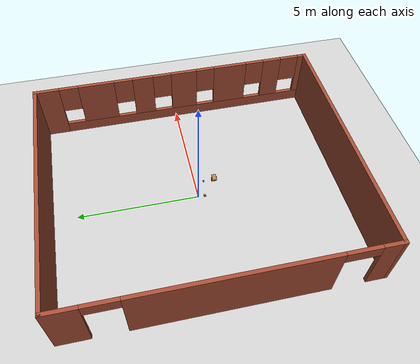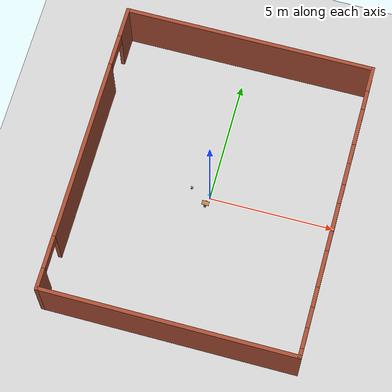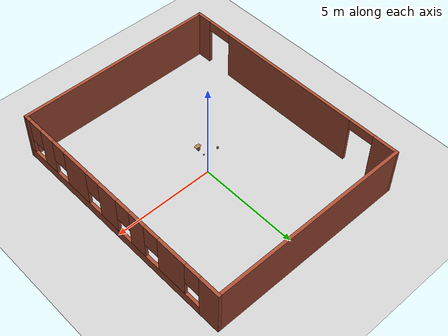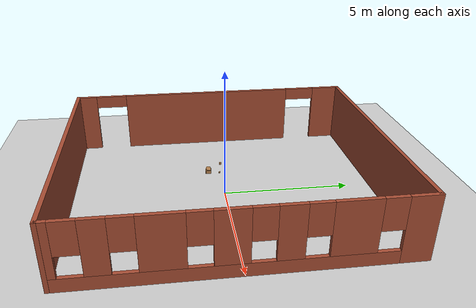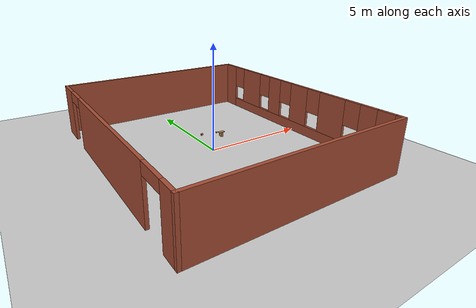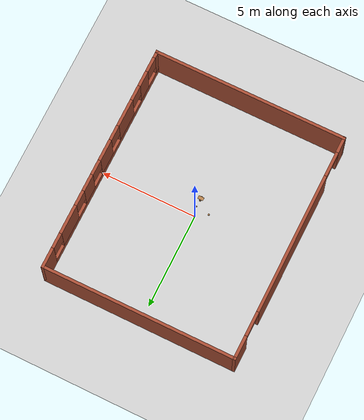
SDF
<sdf version="1.6">
 <world name="default">
  <light name="sun" type="directional">
   <pose>0 0 10 0 -0 0</pose>
   <diffuse>0.8 0.8 0.8 1</diffuse>
   <specular>0.2 0.2 0.2 1</specular>
   <attenuation>
    <range>1000</range>
    <constant>0.9</constant>
    <linear>0.01</linear>
    <quadratic>0.001</quadratic>
   </attenuation>
   <direction>-0.5 0.1 -0.9</direction>
  </light>
  <model name="ground_plane">
   <static>1</static>
   <link name="ground_plane::link">
    <collision name="collision">
     <geometry><plane><normal>0 0 1</normal><size>100 100</size></plane></geometry>
     <surface>
      <contact><collide_bitmask>65535</collide_bitmask></contact>
      <friction><ode><mu>100</mu><mu2>50</mu2></ode></friction>
     </surface>
    </collision>
    <visual name="visual">
     <cast_shadows>0</cast_shadows>
     <geometry><plane><normal>0 0 1</normal><size>100 100</size></plane></geometry>
     <material>
      <script><uri>file://media/materials/scripts/gazebo.material</uri><name>Gazebo/Grey</name></script>
     </material>
    </visual>
   </link>
  </model>
  <gravity>0 0 -9.8</gravity>
  <magnetic_field>6e-06 2.3e-05 -4.2e-05</magnetic_field>
  <atmosphere type="adiabatic"/>
  <physics name="default_physics" default="0" type="ode">
   <max_step_size>0.001</max_step_size>
   <real_time_factor>1</real_time_factor>
   <real_time_update_rate>1000</real_time_update_rate>
  </physics>
  <scene><ambient>0.4 0.4 0.4 1</ambient><background>0.7 0.7 0.7 1</background><shadows>1</shadows></scene>
  <spherical_coordinates>
   <surface_model>EARTH_WGS84</surface_model>
   <latitude_deg>0</latitude_deg>
   <longitude_deg>0</longitude_deg>
   <elevation>0</elevation>
   <heading_deg>0</heading_deg>
  </spherical_coordinates>
  <model name="robot_house">
   <link name="Wall_5">
    <pose>0 6 0 0 -0 0</pose>
    <visual name="Wall_5_Visual">
     <pose>0 0 1.25 0 -0 0</pose>
     <geometry><box><size>10.15 0.15 2.5</size></box></geometry>
     <material>
      <script><uri>file://media/materials/scripts/gazebo.material</uri><name>Gazebo/Bricks</name></script>
      <ambient>1 1 1 1</ambient>
      <shader type="pixel"/>
      <diffuse>1 1 1 1</diffuse>
      <specular>0.2 0.2 0.2 1</specular>
      <emissive>0 0 0 1</emissive>
     </material>
     <meta><layer>0</layer></meta>
    </visual>
    <collision name="Wall_5_Collision">
     <pose>0 0 1.25 0 -0 0</pose>
     <geometry><box><size>10.15 0.15 2.5</size></box></geometry>
     <surface>
      <friction>
       <ode><mu>1</mu><mu2>1</mu2><fdir1>0 0 0</fdir1><slip1>0</slip1><slip2>0</slip2></ode>
       <torsional>
        <coefficient>1</coefficient>
        <patch_radius>0</patch_radius>
        <surface_radius>0</surface_radius>
        <use_patch_radius>1</use_patch_radius>
        <ode><slip>0</slip></ode>
       </torsional>
      </friction>
      <bounce><restitution_coefficient>0</restitution_coefficient><threshold>1e+06</threshold></bounce>
      <contact>
       <collide_without_contact>0</collide_without_contact>
       <collide_without_contact_bitmask>1</collide_without_contact_bitmask>
       <collide_bitmask>1</collide_bitmask>
       <ode>
        <soft_cfm>0</soft_cfm>
        <soft_erp>0.2</soft_erp>
        <kp>1e+13</kp>
        <kd>1</kd>
        <max_vel>0.01</max_vel>
        <min_depth>0</min_depth>
       </ode>
       <bullet>
        <split_impulse>1</split_impulse>
        <split_impulse_penetration_threshold>-0.01</split_impulse_penetration_threshold>
        <soft_cfm>0</soft_cfm>
        <soft_erp>0.2</soft_erp>
        <kp>1e+13</kp>
        <kd>1</kd>
       </bullet>
      </contact>
     </surface>
    </collision>
   </link>
   <link name="Wall_6">
    <pose>5 0 0 0 0 -1.5708</pose>
    <visual name="Wall_6_Visual_2">
     <pose>-3.42977 0 1.5 0 -0 0</pose>
     <geometry><box><size>1.54642 0.15 2</size></box></geometry>
     <material>
      <script><uri>file://media/materials/scripts/gazebo.material</uri><name>Gazebo/Bricks</name></script>
      <ambient>1 1 1 1</ambient>
      <shader type="pixel"/>
      <diffuse>1 1 1 1</diffuse>
      <specular>0.2 0.2 0.2 1</specular>
      <emissive>0 0 0 1</emissive>
     </material>
     <meta><layer>0</layer></meta>
    </visual>
    <visual name="Wall_6_Visual_8">
     <pose>-4.60298 0 1.9 0 -0 0</pose>
     <geometry><box><size>0.8 0.15 1.2</size></box></geometry>
     <material>
      <script><uri>file://media/materials/scripts/gazebo.material</uri><name>Gazebo/Bricks</name></script>
      <ambient>1 1 1 1</ambient>
      <shader type="pixel"/>
      <diffuse>1 1 1 1</diffuse>
      <specular>0.2 0.2 0.2 1</specular>
      <emissive>0 0 0 1</emissive>
     </material>
     <meta><layer>0</layer></meta>
    </visual>
    <visual name="Wall_6_Visual_12">
     <pose>3.64995 0 1.9 0 -0 0</pose>
     <geometry><box><size>0.8 0.15 1.2</size></box></geometry>
     <material>
      <script><uri>file://media/materials/scripts/gazebo.material</uri><name>Gazebo/Bricks</name></script>
      <ambient>1 1 1 1</ambient>
      <shader type="pixel"/>
      <diffuse>1 1 1 1</diffuse>
      <specular>0.2 0.2 0.2 1</specular>
      <emissive>0 0 0 1</emissive>
     </material>
     <meta><layer>0</layer></meta>
    </visual>
    <visual name="Wall_6_Visual_6">
     <pose>4.45907 0 1.5 0 -0 0</pose>
     <geometry><box><size>0.818223 0.15 2</size></box></geometry>
     <material>
      <script><uri>file://media/materials/scripts/gazebo.material</uri><name>Gazebo/Bricks</name></script>
      <ambient>1 1 1 1</ambient>
      <shader type="pixel"/>
      <diffuse>1 1 1 1</diffuse>
      <specular>0.2 0.2 0.2 1</specular>
      <emissive>0 0 0 1</emissive>
     </material>
     <meta><layer>0</layer></meta>
    </visual>
    <visual name="Wall_6_Visual_1">
     <pose>0.536009 0 0.25 0 -0 0</pose>
     <geometry><box><size>11.078 0.15 0.5</size></box></geometry>
     <material>
      <script><uri>file://media/materials/scripts/gazebo.material</uri><name>Gazebo/Bricks</name></script>
      <ambient>1 1 1 1</ambient>
      <shader type="pixel"/>
      <diffuse>1 1 1 1</diffuse>
      <specular>0.2 0.2 0.2 1</specular>
      <emissive>0 0 0 1</emissive>
     </material>
     <meta><layer>0</layer></meta>
    </visual>
    <visual name="Wall_6_Visual_13">
     <pose>5.26818 0 1.9 0 -0 0</pose>
     <geometry><box><size>0.8 0.15 1.2</size></box></geometry>
     <material>
      <script><uri>file://media/materials/scripts/gazebo.material</uri><name>Gazebo/Bricks</name></script>
      <ambient>1 1 1 1</ambient>
      <shader type="pixel"/>
      <diffuse>1 1 1 1</diffuse>
      <specular>0.2 0.2 0.2 1</specular>
      <emissive>0 0 0 1</emissive>
     </material>
     <meta><layer>0</layer></meta>
    </visual>
    <visual name="Wall_6_Visual_10">
     <pose>-0.557425 0 1.9 0 -0 0</pose>
     <geometry><box><size>0.8 0.15 1.2</size></box></geometry>
     <material>
      <script><uri>file://media/materials/scripts/gazebo.material</uri><name>Gazebo/Bricks</name></script>
      <ambient>1 1 1 1</ambient>
      <shader type="pixel"/>
      <diffuse>1 1 1 1</diffuse>
      <specular>0.2 0.2 0.2 1</specular>
      <emissive>0 0 0 1</emissive>
     </material>
     <meta><layer>0</layer></meta>
    </visual>
    <visual name="Wall_6_Visual_11">
     <pose>1.38444 0 1.9 0 -0 0</pose>
     <geometry><box><size>0.8 0.15 1.2</size></box></geometry>
     <material>
      <script><uri>file://media/materials/scripts/gazebo.material</uri><name>Gazebo/Bricks</name></script>
      <ambient>1 1 1 1</ambient>
      <shader type="pixel"/>
      <diffuse>1 1 1 1</diffuse>
      <specular>0.2 0.2 0.2 1</specular>
      <emissive>0 0 0 1</emissive>
     </material>
     <meta><layer>0</layer></meta>
    </visual>
    <visual name="Wall_6_Visual_7">
     <pose>5.87159 0 1.5 0 -0 0</pose>
     <geometry><box><size>0.406822 0.15 2</size></box></geometry>
     <material>
      <script><uri>file://media/materials/scripts/gazebo.material</uri><name>Gazebo/Bricks</name></script>
      <ambient>1 1 1 1</ambient>
      <shader type="pixel"/>
      <diffuse>1 1 1 1</diffuse>
      <specular>0.2 0.2 0.2 1</specular>
      <emissive>0 0 0 1</emissive>
     </material>
     <meta><layer>0</layer></meta>
    </visual>
    <visual name="Wall_6_Visual_4">
     <pose>0.413508 0 1.5 0 -0 0</pose>
     <geometry><box><size>1.14187 0.15 2</size></box></geometry>
     <material>
      <script><uri>file://media/materials/scripts/gazebo.material</uri><name>Gazebo/Bricks</name></script>
      <ambient>1 1 1 1</ambient>
      <shader type="pixel"/>
      <diffuse>1 1 1 1</diffuse>
      <specular>0.2 0.2 0.2 1</specular>
      <emissive>0 0 0 1</emissive>
     </material>
     <meta><layer>0</layer></meta>
    </visual>
    <visual name="Wall_6_Visual_5">
     <pose>2.5172 0 1.5 0 -0 0</pose>
     <geometry><box><size>1.46551 0.15 2</size></box></geometry>
     <material>
      <script><uri>file://media/materials/scripts/gazebo.material</uri><name>Gazebo/Bricks</name></script>
      <ambient>1 1 1 1</ambient>
      <shader type="pixel"/>
      <diffuse>1 1 1 1</diffuse>
      <specular>0.2 0.2 0.2 1</specular>
      <emissive>0 0 0 1</emissive>
     </material>
     <meta><layer>0</layer></meta>
    </visual>
    <visual name="Wall_6_Visual_3">
     <pose>-1.40699 0 1.5 0 -0 0</pose>
     <geometry><box><size>0.899134 0.15 2</size></box></geometry>
     <material>
      <script><uri>file://media/materials/scripts/gazebo.material</uri><name>Gazebo/Bricks</name></script>
      <ambient>1 1 1 1</ambient>
      <shader type="pixel"/>
      <diffuse>1 1 1 1</diffuse>
      <specular>0.2 0.2 0.2 1</specular>
      <emissive>0 0 0 1</emissive>
     </material>
     <meta><layer>0</layer></meta>
    </visual>
    <visual name="Wall_6_Visual_9">
     <pose>-2.25656 0 1.9 0 -0 0</pose>
     <geometry><box><size>0.8 0.15 1.2</size></box></geometry>
     <material>
      <script><uri>file://media/materials/scripts/gazebo.material</uri><name>Gazebo/Bricks</name></script>
      <ambient>1 1 1 1</ambient>
      <shader type="pixel"/>
      <diffuse>1 1 1 1</diffuse>
      <specular>0.2 0.2 0.2 1</specular>
      <emissive>0 0 0 1</emissive>
     </material>
     <meta><layer>0</layer></meta>
    </visual>
    <visual name="Wall_6_Visual_0">
     <pose>-5.53899 0 1.25 0 -0 0</pose>
     <geometry><box><size>1.07202 0.15 2.5</size></box></geometry>
     <material>
      <script><uri>file://media/materials/scripts/gazebo.material</uri><name>Gazebo/Bricks</name></script>
      <ambient>1 1 1 1</ambient>
      <shader type="pixel"/>
      <diffuse>1 1 1 1</diffuse>
      <specular>0.2 0.2 0.2 1</specular>
      <emissive>0 0 0 1</emissive>
     </material>
     <meta><layer>0</layer></meta>
    </visual>
    <collision name="Wall_6_Collision_2">
     <pose>-3.42977 0 1.5 0 -0 0</pose>
     <geometry><box><size>1.54642 0.15 2</size></box></geometry>
     <surface>
      <friction>
       <ode><mu>1</mu><mu2>1</mu2><fdir1>0 0 0</fdir1><slip1>0</slip1><slip2>0</slip2></ode>
       <torsional>
        <coefficient>1</coefficient>
        <patch_radius>0</patch_radius>
        <surface_radius>0</surface_radius>
        <use_patch_radius>1</use_patch_radius>
        <ode><slip>0</slip></ode>
       </torsional>
      </friction>
      <bounce><restitution_coefficient>0</restitution_coefficient><threshold>1e+06</threshold></bounce>
      <contact>
       <collide_without_contact>0</collide_without_contact>
       <collide_without_contact_bitmask>1</collide_without_contact_bitmask>
       <collide_bitmask>1</collide_bitmask>
       <ode>
        <soft_cfm>0</soft_cfm>
        <soft_erp>0.2</soft_erp>
        <kp>1e+13</kp>
        <kd>1</kd>
        <max_vel>0.01</max_vel>
        <min_depth>0</min_depth>
       </ode>
       <bullet>
        <split_impulse>1</split_impulse>
        <split_impulse_penetration_threshold>-0.01</split_impulse_penetration_threshold>
        <soft_cfm>0</soft_cfm>
        <soft_erp>0.2</soft_erp>
        <kp>1e+13</kp>
        <kd>1</kd>
       </bullet>
      </contact>
     </surface>
    </collision>
    <collision name="Wall_6_Collision_4">
     <pose>0.413508 0 1.5 0 -0 0</pose>
     <geometry><box><size>1.14187 0.15 2</size></box></geometry>
     <surface>
      <friction>
       <ode><mu>1</mu><mu2>1</mu2><fdir1>0 0 0</fdir1><slip1>0</slip1><slip2>0</slip2></ode>
       <torsional>
        <coefficient>1</coefficient>
        <patch_radius>0</patch_radius>
        <surface_radius>0</surface_radius>
        <use_patch_radius>1</use_patch_radius>
        <ode><slip>0</slip></ode>
       </torsional>
      </friction>
      <bounce><restitution_coefficient>0</restitution_coefficient><threshold>1e+06</threshold></bounce>
      <contact>
       <collide_without_contact>0</collide_without_contact>
       <collide_without_contact_bitmask>1</collide_without_contact_bitmask>
       <collide_bitmask>1</collide_bitmask>
       <ode>
        <soft_cfm>0</soft_cfm>
        <soft_erp>0.2</soft_erp>
        <kp>1e+13</kp>
        <kd>1</kd>
        <max_vel>0.01</max_vel>
        <min_depth>0</min_depth>
       </ode>
       <bullet>
        <split_impulse>1</split_impulse>
        <split_impulse_penetration_threshold>-0.01</split_impulse_penetration_threshold>
        <soft_cfm>0</soft_cfm>
        <soft_erp>0.2</soft_erp>
        <kp>1e+13</kp>
        <kd>1</kd>
       </bullet>
      </contact>
     </surface>
    </collision>
    <collision name="Wall_6_Collision_5">
     <pose>2.5172 0 1.5 0 -0 0</pose>
     <geometry><box><size>1.46551 0.15 2</size></box></geometry>
     <surface>
      <friction>
       <ode><mu>1</mu><mu2>1</mu2><fdir1>0 0 0</fdir1><slip1>0</slip1><slip2>0</slip2></ode>
       <torsional>
        <coefficient>1</coefficient>
        <patch_radius>0</patch_radius>
        <surface_radius>0</surface_radius>
        <use_patch_radius>1</use_patch_radius>
        <ode><slip>0</slip></ode>
       </torsional>
      </friction>
      <bounce><restitution_coefficient>0</restitution_coefficient><threshold>1e+06</threshold></bounce>
      <contact>
       <collide_without_contact>0</collide_without_contact>
       <collide_without_contact_bitmask>1</collide_without_contact_bitmask>
       <collide_bitmask>1</collide_bitmask>
       <ode>
        <soft_cfm>0</soft_cfm>
        <soft_erp>0.2</soft_erp>
        <kp>1e+13</kp>
        <kd>1</kd>
        <max_vel>0.01</max_vel>
        <min_depth>0</min_depth>
       </ode>
       <bullet>
        <split_impulse>1</split_impulse>
        <split_impulse_penetration_threshold>-0.01</split_impulse_penetration_threshold>
        <soft_cfm>0</soft_cfm>
        <soft_erp>0.2</soft_erp>
        <kp>1e+13</kp>
        <kd>1</kd>
       </bullet>
      </contact>
     </surface>
    </collision>
    <collision name="Wall_6_Collision_1">
     <pose>0.536009 0 0.25 0 -0 0</pose>
     <geometry><box><size>11.078 0.15 0.5</size></box></geometry>
     <surface>
      <friction>
       <ode><mu>1</mu><mu2>1</mu2><fdir1>0 0 0</fdir1><slip1>0</slip1><slip2>0</slip2></ode>
       <torsional>
        <coefficient>1</coefficient>
        <patch_radius>0</patch_radius>
        <surface_radius>0</surface_radius>
        <use_patch_radius>1</use_patch_radius>
        <ode><slip>0</slip></ode>
       </torsional>
      </friction>
      <bounce><restitution_coefficient>0</restitution_coefficient><threshold>1e+06</threshold></bounce>
      <contact>
       <collide_without_contact>0</collide_without_contact>
       <collide_without_contact_bitmask>1</collide_without_contact_bitmask>
       <collide_bitmask>1</collide_bitmask>
       <ode>
        <soft_cfm>0</soft_cfm>
        <soft_erp>0.2</soft_erp>
        <kp>1e+13</kp>
        <kd>1</kd>
        <max_vel>0.01</max_vel>
        <min_depth>0</min_depth>
       </ode>
       <bullet>
        <split_impulse>1</split_impulse>
        <split_impulse_penetration_threshold>-0.01</split_impulse_penetration_threshold>
        <soft_cfm>0</soft_cfm>
        <soft_erp>0.2</soft_erp>
        <kp>1e+13</kp>
        <kd>1</kd>
       </bullet>
      </contact>
     </surface>
    </collision>
    <collision name="Wall_6_Collision_8">
     <pose>-4.60298 0 1.9 0 -0 0</pose>
     <geometry><box><size>0.8 0.15 1.2</size></box></geometry>
     <surface>
      <friction>
       <ode><mu>1</mu><mu2>1</mu2><fdir1>0 0 0</fdir1><slip1>0</slip1><slip2>0</slip2></ode>
       <torsional>
        <coefficient>1</coefficient>
        <patch_radius>0</patch_radius>
        <surface_radius>0</surface_radius>
        <use_patch_radius>1</use_patch_radius>
        <ode><slip>0</slip></ode>
       </torsional>
      </friction>
      <bounce><restitution_coefficient>0</restitution_coefficient><threshold>1e+06</threshold></bounce>
      <contact>
       <collide_without_contact>0</collide_without_contact>
       <collide_without_contact_bitmask>1</collide_without_contact_bitmask>
       <collide_bitmask>1</collide_bitmask>
       <ode>
        <soft_cfm>0</soft_cfm>
        <soft_erp>0.2</soft_erp>
        <kp>1e+13</kp>
        <kd>1</kd>
        <max_vel>0.01</max_vel>
        <min_depth>0</min_depth>
       </ode>
       <bullet>
        <split_impulse>1</split_impulse>
        <split_impulse_penetration_threshold>-0.01</split_impulse_penetration_threshold>
        <soft_cfm>0</soft_cfm>
        <soft_erp>0.2</soft_erp>
        <kp>1e+13</kp>
        <kd>1</kd>
       </bullet>
      </contact>
     </surface>
    </collision>
    <collision name="Wall_6_Collision_9">
     <pose>-2.25656 0 1.9 0 -0 0</pose>
     <geometry><box><size>0.8 0.15 1.2</size></box></geometry>
     <surface>
      <friction>
       <ode><mu>1</mu><mu2>1</mu2><fdir1>0 0 0</fdir1><slip1>0</slip1><slip2>0</slip2></ode>
       <torsional>
        <coefficient>1</coefficient>
        <patch_radius>0</patch_radius>
        <surface_radius>0</surface_radius>
        <use_patch_radius>1</use_patch_radius>
        <ode><slip>0</slip></ode>
       </torsional>
      </friction>
      <bounce><restitution_coefficient>0</restitution_coefficient><threshold>1e+06</threshold></bounce>
      <contact>
       <collide_without_contact>0</collide_without_contact>
       <collide_without_contact_bitmask>1</collide_without_contact_bitmask>
       <collide_bitmask>1</collide_bitmask>
       <ode>
        <soft_cfm>0</soft_cfm>
        <soft_erp>0.2</soft_erp>
        <kp>1e+13</kp>
        <kd>1</kd>
        <max_vel>0.01</max_vel>
        <min_depth>0</min_depth>
       </ode>
       <bullet>
        <split_impulse>1</split_impulse>
        <split_impulse_penetration_threshold>-0.01</split_impulse_penetration_threshold>
        <soft_cfm>0</soft_cfm>
        <soft_erp>0.2</soft_erp>
        <kp>1e+13</kp>
        <kd>1</kd>
       </bullet>
      </contact>
     </surface>
    </collision>
    <collision name="Wall_6_Collision_10">
     <pose>-0.557425 0 1.9 0 -0 0</pose>
     <geometry><box><size>0.8 0.15 1.2</size></box></geometry>
     <surface>
      <friction>
       <ode><mu>1</mu><mu2>1</mu2><fdir1>0 0 0</fdir1><slip1>0</slip1><slip2>0</slip2></ode>
       <torsional>
        <coefficient>1</coefficient>
        <patch_radius>0</patch_radius>
        <surface_radius>0</surface_radius>
        <use_patch_radius>1</use_patch_radius>
        <ode><slip>0</slip></ode>
       </torsional>
      </friction>
      <bounce><restitution_coefficient>0</restitution_coefficient><threshold>1e+06</threshold></bounce>
      <contact>
       <collide_without_contact>0</collide_without_contact>
       <collide_without_contact_bitmask>1</collide_without_contact_bitmask>
       <collide_bitmask>1</collide_bitmask>
       <ode>
        <soft_cfm>0</soft_cfm>
        <soft_erp>0.2</soft_erp>
        <kp>1e+13</kp>
        <kd>1</kd>
        <max_vel>0.01</max_vel>
        <min_depth>0</min_depth>
       </ode>
       <bullet>
        <split_impulse>1</split_impulse>
        <split_impulse_penetration_threshold>-0.01</split_impulse_penetration_threshold>
        <soft_cfm>0</soft_cfm>
        <soft_erp>0.2</soft_erp>
        <kp>1e+13</kp>
        <kd>1</kd>
       </bullet>
      </contact>
     </surface>
    </collision>
    <collision name="Wall_6_Collision_11">
     <pose>1.38444 0 1.9 0 -0 0</pose>
     <geometry><box><size>0.8 0.15 1.2</size></box></geometry>
     <surface>
      <friction>
       <ode><mu>1</mu><mu2>1</mu2><fdir1>0 0 0</fdir1><slip1>0</slip1><slip2>0</slip2></ode>
       <torsional>
        <coefficient>1</coefficient>
        <patch_radius>0</patch_radius>
        <surface_radius>0</surface_radius>
        <use_patch_radius>1</use_patch_radius>
        <ode><slip>0</slip></ode>
       </torsional>
      </friction>
      <bounce><restitution_coefficient>0</restitution_coefficient><threshold>1e+06</threshold></bounce>
      <contact>
       <collide_without_contact>0</collide_without_contact>
       <collide_without_contact_bitmask>1</collide_without_contact_bitmask>
       <collide_bitmask>1</collide_bitmask>
       <ode>
        <soft_cfm>0</soft_cfm>
        <soft_erp>0.2</soft_erp>
        <kp>1e+13</kp>
        <kd>1</kd>
        <max_vel>0.01</max_vel>
        <min_depth>0</min_depth>
       </ode>
       <bullet>
        <split_impulse>1</split_impulse>
        <split_impulse_penetration_threshold>-0.01</split_impulse_penetration_threshold>
        <soft_cfm>0</soft_cfm>
        <soft_erp>0.2</soft_erp>
        <kp>1e+13</kp>
        <kd>1</kd>
       </bullet>
      </contact>
     </surface>
    </collision>
    <collision name="Wall_6_Collision_12">
     <pose>3.64995 0 1.9 0 -0 0</pose>
     <geometry><box><size>0.8 0.15 1.2</size></box></geometry>
     <surface>
      <friction>
       <ode><mu>1</mu><mu2>1</mu2><fdir1>0 0 0</fdir1><slip1>0</slip1><slip2>0</slip2></ode>
       <torsional>
        <coefficient>1</coefficient>
        <patch_radius>0</patch_radius>
        <surface_radius>0</surface_radius>
        <use_patch_radius>1</use_patch_radius>
        <ode><slip>0</slip></ode>
       </torsional>
      </friction>
      <bounce><restitution_coefficient>0</restitution_coefficient><threshold>1e+06</threshold></bounce>
      <contact>
       <collide_without_contact>0</collide_without_contact>
       <collide_without_contact_bitmask>1</collide_without_contact_bitmask>
       <collide_bitmask>1</collide_bitmask>
       <ode>
        <soft_cfm>0</soft_cfm>
        <soft_erp>0.2</soft_erp>
        <kp>1e+13</kp>
        <kd>1</kd>
        <max_vel>0.01</max_vel>
        <min_depth>0</min_depth>
       </ode>
       <bullet>
        <split_impulse>1</split_impulse>
        <split_impulse_penetration_threshold>-0.01</split_impulse_penetration_threshold>
        <soft_cfm>0</soft_cfm>
        <soft_erp>0.2</soft_erp>
        <kp>1e+13</kp>
        <kd>1</kd>
       </bullet>
      </contact>
     </surface>
    </collision>
    <collision name="Wall_6_Collision_13">
     <pose>5.26818 0 1.9 0 -0 0</pose>
     <geometry><box><size>0.8 0.15 1.2</size></box></geometry>
     <surface>
      <friction>
       <ode><mu>1</mu><mu2>1</mu2><fdir1>0 0 0</fdir1><slip1>0</slip1><slip2>0</slip2></ode>
       <torsional>
        <coefficient>1</coefficient>
        <patch_radius>0</patch_radius>
        <surface_radius>0</surface_radius>
        <use_patch_radius>1</use_patch_radius>
        <ode><slip>0</slip></ode>
       </torsional>
      </friction>
      <bounce><restitution_coefficient>0</restitution_coefficient><threshold>1e+06</threshold></bounce>
      <contact>
       <collide_without_contact>0</collide_without_contact>
       <collide_without_contact_bitmask>1</collide_without_contact_bitmask>
       <collide_bitmask>1</collide_bitmask>
       <ode>
        <soft_cfm>0</soft_cfm>
        <soft_erp>0.2</soft_erp>
        <kp>1e+13</kp>
        <kd>1</kd>
        <max_vel>0.01</max_vel>
        <min_depth>0</min_depth>
       </ode>
       <bullet>
        <split_impulse>1</split_impulse>
        <split_impulse_penetration_threshold>-0.01</split_impulse_penetration_threshold>
        <soft_cfm>0</soft_cfm>
        <soft_erp>0.2</soft_erp>
        <kp>1e+13</kp>
        <kd>1</kd>
       </bullet>
      </contact>
     </surface>
    </collision>
    <collision name="Wall_6_Collision_3">
     <pose>-1.40699 0 1.5 0 -0 0</pose>
     <geometry><box><size>0.899134 0.15 2</size></box></geometry>
     <surface>
      <friction>
       <ode><mu>1</mu><mu2>1</mu2><fdir1>0 0 0</fdir1><slip1>0</slip1><slip2>0</slip2></ode>
       <torsional>
        <coefficient>1</coefficient>
        <patch_radius>0</patch_radius>
        <surface_radius>0</surface_radius>
        <use_patch_radius>1</use_patch_radius>
        <ode><slip>0</slip></ode>
       </torsional>
      </friction>
      <bounce><restitution_coefficient>0</restitution_coefficient><threshold>1e+06</threshold></bounce>
      <contact>
       <collide_without_contact>0</collide_without_contact>
       <collide_without_contact_bitmask>1</collide_without_contact_bitmask>
       <collide_bitmask>1</collide_bitmask>
       <ode>
        <soft_cfm>0</soft_cfm>
        <soft_erp>0.2</soft_erp>
        <kp>1e+13</kp>
        <kd>1</kd>
        <max_vel>0.01</max_vel>
        <min_depth>0</min_depth>
       </ode>
       <bullet>
        <split_impulse>1</split_impulse>
        <split_impulse_penetration_threshold>-0.01</split_impulse_penetration_threshold>
        <soft_cfm>0</soft_cfm>
        <soft_erp>0.2</soft_erp>
        <kp>1e+13</kp>
        <kd>1</kd>
       </bullet>
      </contact>
     </surface>
    </collision>
    <collision name="Wall_6_Collision_6">
     <pose>4.45907 0 1.5 0 -0 0</pose>
     <geometry><box><size>0.818223 0.15 2</size></box></geometry>
     <surface>
      <friction>
       <ode><mu>1</mu><mu2>1</mu2><fdir1>0 0 0</fdir1><slip1>0</slip1><slip2>0</slip2></ode>
       <torsional>
        <coefficient>1</coefficient>
        <patch_radius>0</patch_radius>
        <surface_radius>0</surface_radius>
        <use_patch_radius>1</use_patch_radius>
        <ode><slip>0</slip></ode>
       </torsional>
      </friction>
      <bounce><restitution_coefficient>0</restitution_coefficient><threshold>1e+06</threshold></bounce>
      <contact>
       <collide_without_contact>0</collide_without_contact>
       <collide_without_contact_bitmask>1</collide_without_contact_bitmask>
       <collide_bitmask>1</collide_bitmask>
       <ode>
        <soft_cfm>0</soft_cfm>
        <soft_erp>0.2</soft_erp>
        <kp>1e+13</kp>
        <kd>1</kd>
        <max_vel>0.01</max_vel>
        <min_depth>0</min_depth>
       </ode>
       <bullet>
        <split_impulse>1</split_impulse>
        <split_impulse_penetration_threshold>-0.01</split_impulse_penetration_threshold>
        <soft_cfm>0</soft_cfm>
        <soft_erp>0.2</soft_erp>
        <kp>1e+13</kp>
        <kd>1</kd>
       </bullet>
      </contact>
     </surface>
    </collision>
    <collision name="Wall_6_Collision_7">
     <pose>5.87159 0 1.5 0 -0 0</pose>
     <geometry><box><size>0.406822 0.15 2</size></box></geometry>
     <surface>
      <friction>
       <ode><mu>1</mu><mu2>1</mu2><fdir1>0 0 0</fdir1><slip1>0</slip1><slip2>0</slip2></ode>
       <torsional>
        <coefficient>1</coefficient>
        <patch_radius>0</patch_radius>
        <surface_radius>0</surface_radius>
        <use_patch_radius>1</use_patch_radius>
        <ode><slip>0</slip></ode>
       </torsional>
      </friction>
      <bounce><restitution_coefficient>0</restitution_coefficient><threshold>1e+06</threshold></bounce>
      <contact>
       <collide_without_contact>0</collide_without_contact>
       <collide_without_contact_bitmask>1</collide_without_contact_bitmask>
       <collide_bitmask>1</collide_bitmask>
       <ode>
        <soft_cfm>0</soft_cfm>
        <soft_erp>0.2</soft_erp>
        <kp>1e+13</kp>
        <kd>1</kd>
        <max_vel>0.01</max_vel>
        <min_depth>0</min_depth>
       </ode>
       <bullet>
        <split_impulse>1</split_impulse>
        <split_impulse_penetration_threshold>-0.01</split_impulse_penetration_threshold>
        <soft_cfm>0</soft_cfm>
        <soft_erp>0.2</soft_erp>
        <kp>1e+13</kp>
        <kd>1</kd>
       </bullet>
      </contact>
     </surface>
    </collision>
    <collision name="Wall_6_Collision_0">
     <pose>-5.53899 0 1.25 0 -0 0</pose>
     <geometry><box><size>1.07202 0.15 2.5</size></box></geometry>
     <surface>
      <friction>
       <ode><mu>1</mu><mu2>1</mu2><fdir1>0 0 0</fdir1><slip1>0</slip1><slip2>0</slip2></ode>
       <torsional>
        <coefficient>1</coefficient>
        <patch_radius>0</patch_radius>
        <surface_radius>0</surface_radius>
        <use_patch_radius>1</use_patch_radius>
        <ode><slip>0</slip></ode>
       </torsional>
      </friction>
      <bounce><restitution_coefficient>0</restitution_coefficient><threshold>1e+06</threshold></bounce>
      <contact>
       <collide_without_contact>0</collide_without_contact>
       <collide_without_contact_bitmask>1</collide_without_contact_bitmask>
       <collide_bitmask>1</collide_bitmask>
       <ode>
        <soft_cfm>0</soft_cfm>
        <soft_erp>0.2</soft_erp>
        <kp>1e+13</kp>
        <kd>1</kd>
        <max_vel>0.01</max_vel>
        <min_depth>0</min_depth>
       </ode>
       <bullet>
        <split_impulse>1</split_impulse>
        <split_impulse_penetration_threshold>-0.01</split_impulse_penetration_threshold>
        <soft_cfm>0</soft_cfm>
        <soft_erp>0.2</soft_erp>
        <kp>1e+13</kp>
        <kd>1</kd>
       </bullet>
      </contact>
     </surface>
    </collision>
   </link>
   <link name="Wall_7">
    <pose>0 -6 0 0 -0 3.14159</pose>
    <visual name="Wall_7_Visual">
     <pose>0 0 1.25 0 -0 0</pose>
     <geometry><box><size>10.15 0.15 2.5</size></box></geometry>
     <material>
      <script><uri>file://media/materials/scripts/gazebo.material</uri><name>Gazebo/Bricks</name></script>
      <ambient>1 1 1 1</ambient>
      <shader type="pixel"/>
      <diffuse>1 1 1 1</diffuse>
      <specular>0.2 0.2 0.2 1</specular>
      <emissive>0 0 0 1</emissive>
     </material>
     <meta><layer>0</layer></meta>
    </visual>
    <collision name="Wall_7_Collision">
     <pose>0 0 1.25 0 -0 0</pose>
     <geometry><box><size>10.15 0.15 2.5</size></box></geometry>
     <surface>
      <friction>
       <ode><mu>1</mu><mu2>1</mu2><fdir1>0 0 0</fdir1><slip1>0</slip1><slip2>0</slip2></ode>
       <torsional>
        <coefficient>1</coefficient>
        <patch_radius>0</patch_radius>
        <surface_radius>0</surface_radius>
        <use_patch_radius>1</use_patch_radius>
        <ode><slip>0</slip></ode>
       </torsional>
      </friction>
      <bounce><restitution_coefficient>0</restitution_coefficient><threshold>1e+06</threshold></bounce>
      <contact>
       <collide_without_contact>0</collide_without_contact>
       <collide_without_contact_bitmask>1</collide_without_contact_bitmask>
       <collide_bitmask>1</collide_bitmask>
       <ode>
        <soft_cfm>0</soft_cfm>
        <soft_erp>0.2</soft_erp>
        <kp>1e+13</kp>
        <kd>1</kd>
        <max_vel>0.01</max_vel>
        <min_depth>0</min_depth>
       </ode>
       <bullet>
        <split_impulse>1</split_impulse>
        <split_impulse_penetration_threshold>-0.01</split_impulse_penetration_threshold>
        <soft_cfm>0</soft_cfm>
        <soft_erp>0.2</soft_erp>
        <kp>1e+13</kp>
        <kd>1</kd>
       </bullet>
      </contact>
     </surface>
    </collision>
   </link>
   <link name="Wall_8">
    <pose>-5 0 0 0 -0 1.5708</pose>
    <visual name="Wall_8_Visual_0">
     <pose>-5.63743 0 1.25 0 -0 0</pose>
     <geometry><box><size>0.87514 0.15 2.5</size></box></geometry>
     <material>
      <script><uri>file://media/materials/scripts/gazebo.material</uri><name>Gazebo/Bricks</name></script>
      <ambient>1 1 1 1</ambient>
      <shader type="pixel"/>
      <diffuse>1 1 1 1</diffuse>
      <specular>0.2 0.2 0.2 1</specular>
      <emissive>0 0 0 1</emissive>
     </material>
     <meta><layer>0</layer></meta>
    </visual>
    <visual name="Wall_8_Visual_1">
     <pose>-0.1843 0 1.25 0 -0 0</pose>
     <geometry><box><size>7.41283 0.15 2.5</size></box></geometry>
     <material>
      <script><uri>file://media/materials/scripts/gazebo.material</uri><name>Gazebo/Bricks</name></script>
      <ambient>1 1 1 1</ambient>
      <shader type="pixel"/>
      <diffuse>1 1 1 1</diffuse>
      <specular>0.2 0.2 0.2 1</specular>
      <emissive>0 0 0 1</emissive>
     </material>
     <meta><layer>0</layer></meta>
    </visual>
    <visual name="Wall_8_Visual_2">
     <pose>5.43964 0 1.25 0 -0 0</pose>
     <geometry><box><size>1.27073 0.15 2.5</size></box></geometry>
     <material>
      <script><uri>file://media/materials/scripts/gazebo.material</uri><name>Gazebo/Bricks</name></script>
      <ambient>1 1 1 1</ambient>
      <shader type="pixel"/>
      <diffuse>1 1 1 1</diffuse>
      <specular>0.2 0.2 0.2 1</specular>
      <emissive>0 0 0 1</emissive>
     </material>
     <meta><layer>0</layer></meta>
    </visual>
    <visual name="Wall_8_Visual_3">
     <pose>-4.54529 0 2.25 0 -0 0</pose>
     <geometry><box><size>1.30915 0.15 0.5</size></box></geometry>
     <material>
      <script><uri>file://media/materials/scripts/gazebo.material</uri><name>Gazebo/Bricks</name></script>
      <ambient>1 1 1 1</ambient>
      <shader type="pixel"/>
      <diffuse>1 1 1 1</diffuse>
      <specular>0.2 0.2 0.2 1</specular>
      <emissive>0 0 0 1</emissive>
     </material>
     <meta><layer>0</layer></meta>
    </visual>
    <visual name="Wall_8_Visual_4">
     <pose>4.16319 0 2.25 0 -0 0</pose>
     <geometry><box><size>1.28216 0.15 0.5</size></box></geometry>
     <material>
      <script><uri>file://media/materials/scripts/gazebo.material</uri><name>Gazebo/Bricks</name></script>
      <ambient>1 1 1 1</ambient>
      <shader type="pixel"/>
      <diffuse>1 1 1 1</diffuse>
      <specular>0.2 0.2 0.2 1</specular>
      <emissive>0 0 0 1</emissive>
     </material>
     <meta><layer>0</layer></meta>
    </visual>
    <collision name="Wall_8_Collision_0">
     <pose>-5.63743 0 1.25 0 -0 0</pose>
     <geometry><box><size>0.87514 0.15 2.5</size></box></geometry>
     <surface>
      <friction>
       <ode><mu>1</mu><mu2>1</mu2><fdir1>0 0 0</fdir1><slip1>0</slip1><slip2>0</slip2></ode>
       <torsional>
        <coefficient>1</coefficient>
        <patch_radius>0</patch_radius>
        <surface_radius>0</surface_radius>
        <use_patch_radius>1</use_patch_radius>
        <ode><slip>0</slip></ode>
       </torsional>
      </friction>
      <bounce><restitution_coefficient>0</restitution_coefficient><threshold>1e+06</threshold></bounce>
      <contact>
       <collide_without_contact>0</collide_without_contact>
       <collide_without_contact_bitmask>1</collide_without_contact_bitmask>
       <collide_bitmask>1</collide_bitmask>
       <ode>
        <soft_cfm>0</soft_cfm>
        <soft_erp>0.2</soft_erp>
        <kp>1e+13</kp>
        <kd>1</kd>
        <max_vel>0.01</max_vel>
        <min_depth>0</min_depth>
       </ode>
       <bullet>
        <split_impulse>1</split_impulse>
        <split_impulse_penetration_threshold>-0.01</split_impulse_penetration_threshold>
        <soft_cfm>0</soft_cfm>
        <soft_erp>0.2</soft_erp>
        <kp>1e+13</kp>
        <kd>1</kd>
       </bullet>
      </contact>
     </surface>
    </collision>
    <collision name="Wall_8_Collision_1">
     <pose>-0.1843 0 1.25 0 -0 0</pose>
     <geometry><box><size>7.41283 0.15 2.5</size></box></geometry>
     <surface>
      <friction>
       <ode><mu>1</mu><mu2>1</mu2><fdir1>0 0 0</fdir1><slip1>0</slip1><slip2>0</slip2></ode>
       <torsional>
        <coefficient>1</coefficient>
        <patch_radius>0</patch_radius>
        <surface_radius>0</surface_radius>
        <use_patch_radius>1</use_patch_radius>
        <ode><slip>0</slip></ode>
       </torsional>
      </friction>
      <bounce><restitution_coefficient>0</restitution_coefficient><threshold>1e+06</threshold></bounce>
      <contact>
       <collide_without_contact>0</collide_without_contact>
       <collide_without_contact_bitmask>1</collide_without_contact_bitmask>
       <collide_bitmask>1</collide_bitmask>
       <ode>
        <soft_cfm>0</soft_cfm>
        <soft_erp>0.2</soft_erp>
        <kp>1e+13</kp>
        <kd>1</kd>
        <max_vel>0.01</max_vel>
        <min_depth>0</min_depth>
       </ode>
       <bullet>
        <split_impulse>1</split_impulse>
        <split_impulse_penetration_threshold>-0.01</split_impulse_penetration_threshold>
        <soft_cfm>0</soft_cfm>
        <soft_erp>0.2</soft_erp>
        <kp>1e+13</kp>
        <kd>1</kd>
       </bullet>
      </contact>
     </surface>
    </collision>
    <collision name="Wall_8_Collision_2">
     <pose>5.43964 0 1.25 0 -0 0</pose>
     <geometry><box><size>1.27073 0.15 2.5</size></box></geometry>
     <surface>
      <friction>
       <ode><mu>1</mu><mu2>1</mu2><fdir1>0 0 0</fdir1><slip1>0</slip1><slip2>0</slip2></ode>
       <torsional>
        <coefficient>1</coefficient>
        <patch_radius>0</patch_radius>
        <surface_radius>0</surface_radius>
        <use_patch_radius>1</use_patch_radius>
        <ode><slip>0</slip></ode>
       </torsional>
      </friction>
      <bounce><restitution_coefficient>0</restitution_coefficient><threshold>1e+06</threshold></bounce>
      <contact>
       <collide_without_contact>0</collide_without_contact>
       <collide_without_contact_bitmask>1</collide_without_contact_bitmask>
       <collide_bitmask>1</collide_bitmask>
       <ode>
        <soft_cfm>0</soft_cfm>
        <soft_erp>0.2</soft_erp>
        <kp>1e+13</kp>
        <kd>1</kd>
        <max_vel>0.01</max_vel>
        <min_depth>0</min_depth>
       </ode>
       <bullet>
        <split_impulse>1</split_impulse>
        <split_impulse_penetration_threshold>-0.01</split_impulse_penetration_threshold>
        <soft_cfm>0</soft_cfm>
        <soft_erp>0.2</soft_erp>
        <kp>1e+13</kp>
        <kd>1</kd>
       </bullet>
      </contact>
     </surface>
    </collision>
    <collision name="Wall_8_Collision_4">
     <pose>4.16319 0 2.25 0 -0 0</pose>
     <geometry><box><size>1.28216 0.15 0.5</size></box></geometry>
     <surface>
      <friction>
       <ode><mu>1</mu><mu2>1</mu2><fdir1>0 0 0</fdir1><slip1>0</slip1><slip2>0</slip2></ode>
       <torsional>
        <coefficient>1</coefficient>
        <patch_radius>0</patch_radius>
        <surface_radius>0</surface_radius>
        <use_patch_radius>1</use_patch_radius>
        <ode><slip>0</slip></ode>
       </torsional>
      </friction>
      <bounce><restitution_coefficient>0</restitution_coefficient><threshold>1e+06</threshold></bounce>
      <contact>
       <collide_without_contact>0</collide_without_contact>
       <collide_without_contact_bitmask>1</collide_without_contact_bitmask>
       <collide_bitmask>1</collide_bitmask>
       <ode>
        <soft_cfm>0</soft_cfm>
        <soft_erp>0.2</soft_erp>
        <kp>1e+13</kp>
        <kd>1</kd>
        <max_vel>0.01</max_vel>
        <min_depth>0</min_depth>
       </ode>
       <bullet>
        <split_impulse>1</split_impulse>
        <split_impulse_penetration_threshold>-0.01</split_impulse_penetration_threshold>
        <soft_cfm>0</soft_cfm>
        <soft_erp>0.2</soft_erp>
        <kp>1e+13</kp>
        <kd>1</kd>
       </bullet>
      </contact>
     </surface>
    </collision>
    <collision name="Wall_8_Collision_3">
     <pose>-4.54529 0 2.25 0 -0 0</pose>
     <geometry><box><size>1.30915 0.15 0.5</size></box></geometry>
     <surface>
      <friction>
       <ode><mu>1</mu><mu2>1</mu2><fdir1>0 0 0</fdir1><slip1>0</slip1><slip2>0</slip2></ode>
       <torsional>
        <coefficient>1</coefficient>
        <patch_radius>0</patch_radius>
        <surface_radius>0</surface_radius>
        <use_patch_radius>1</use_patch_radius>
        <ode><slip>0</slip></ode>
       </torsional>
      </friction>
      <bounce><restitution_coefficient>0</restitution_coefficient><threshold>1e+06</threshold></bounce>
      <contact>
       <collide_without_contact>0</collide_without_contact>
       <collide_without_contact_bitmask>1</collide_without_contact_bitmask>
       <collide_bitmask>1</collide_bitmask>
       <ode>
        <soft_cfm>0</soft_cfm>
        <soft_erp>0.2</soft_erp>
        <kp>1e+13</kp>
        <kd>1</kd>
        <max_vel>0.01</max_vel>
        <min_depth>0</min_depth>
       </ode>
       <bullet>
        <split_impulse>1</split_impulse>
        <split_impulse_penetration_threshold>-0.01</split_impulse_penetration_threshold>
        <soft_cfm>0</soft_cfm>
        <soft_erp>0.2</soft_erp>
        <kp>1e+13</kp>
        <kd>1</kd>
       </bullet>
      </contact>
     </surface>
    </collision>
   </link>
   <static>1</static>
  </model>
  <light name="user_point_light_0" type="point">
   <pose>-0.041475 -0.025778 1 0 -0 0</pose>
   <diffuse>0.5 0.5 0.5 1</diffuse>
   <specular>0.1 0.1 0.1 1</specular>
   <attenuation>
    <range>20</range>
    <constant>0.5</constant>
    <linear>0.01</linear>
    <quadratic>0.001</quadratic>
   </attenuation>
   <cast_shadows>0</cast_shadows>
   <direction>0 0 -1</direction>
  </light>
  <light name="user_point_light_1" type="point">
   <pose>3.62232 5.86938 1 0 -0 0</pose>
   <diffuse>0.5 0.5 0.5 1</diffuse>
   <specular>0.1 0.1 0.1 1</specular>
   <attenuation>
    <range>20</range>
    <constant>0.5</constant>
    <linear>0.01</linear>
    <quadratic>0.001</quadratic>
   </attenuation>
   <cast_shadows>0</cast_shadows>
   <direction>0 0 -1</direction>
  </light>
  <light name="user_point_light_2" type="point">
   <pose>3.99718 1.94373 1 0 -0 0</pose>
   <diffuse>0.5 0.5 0.5 1</diffuse>
   <specular>0.1 0.1 0.1 1</specular>
   <attenuation>
    <range>20</range>
    <constant>0.5</constant>
    <linear>0.01</linear>
    <quadratic>0.001</quadratic>
   </attenuation>
   <cast_shadows>0</cast_shadows>
   <direction>0 0 -1</direction>
  </light>
  <light name="user_point_light_3" type="point">
   <pose>3.80767 -4.97088 1 0 -0 0</pose>
   <diffuse>0.5 0.5 0.5 1</diffuse>
   <specular>0.1 0.1 0.1 1</specular>
   <attenuation>
    <range>20</range>
    <constant>0.5</constant>
    <linear>0.01</linear>
    <quadratic>0.001</quadratic>
   </attenuation>
   <cast_shadows>0</cast_shadows>
   <direction>0 0 -1</direction>
  </light>
  <light name="user_point_light_4" type="point">
   <pose>-0.542327 -4.91782 1 0 -0 0</pose>
   <diffuse>0.5 0.5 0.5 1</diffuse>
   <specular>0.1 0.1 0.1 1</specular>
   <attenuation>
    <range>20</range>
    <constant>0.5</constant>
    <linear>0.01</linear>
    <quadratic>0.001</quadratic>
   </attenuation>
   <cast_shadows>0</cast_shadows>
   <direction>0 0 -1</direction>
  </light>
  <light name="user_point_light_5" type="point">
   <pose>3.89967 -1.57672 1 0 -0 0</pose>
   <diffuse>0.5 0.5 0.5 1</diffuse>
   <specular>0.1 0.1 0.1 1</specular>
   <attenuation>
    <range>20</range>
    <constant>0.5</constant>
    <linear>0.01</linear>
    <quadratic>0.001</quadratic>
   </attenuation>
   <cast_shadows>0</cast_shadows>
   <direction>0 0 -1</direction>
  </light>
  <light name="user_point_light_8" type="point">
   <pose>-4.81723 6.05073 1 0 -0 0</pose>
   <diffuse>0.5 0.5 0.5 1</diffuse>
   <specular>0.1 0.1 0.1 1</specular>
   <attenuation>
    <range>20</range>
    <constant>0.5</constant>
    <linear>0.01</linear>
    <quadratic>0.001</quadratic>
   </attenuation>
   <cast_shadows>0</cast_shadows>
   <direction>0 0 -1</direction>
  </light>
  <light name="user_point_light_9" type="point">
   <pose>-3.82087 1.41925 1 0 -0 0</pose>
   <diffuse>0.5 0.5 0.5 1</diffuse>
   <specular>0.1 0.1 0.1 1</specular>
   <attenuation>
    <range>20</range>
    <constant>0.5</constant>
    <linear>0.01</linear>
    <quadratic>0.001</quadratic>
   </attenuation>
   <cast_shadows>0</cast_shadows>
   <direction>0 0 -1</direction>
  </light>
  <light name="user_point_light_10" type="point">
   <pose>-3.5293 -5.23586 1 0 -0 0</pose>
   <diffuse>0.5 0.5 0.5 1</diffuse>
   <specular>0.1 0.1 0.1 1</specular>
   <attenuation>
    <range>20</range>
    <constant>0.5</constant>
    <linear>0.01</linear>
    <quadratic>0.001</quadratic>
   </attenuation>
   <cast_shadows>0</cast_shadows>
   <direction>0 0 -1</direction>
  </light>
  <light name="user_point_light_11" type="point">
   <pose>-3.86374 -2.15376 1 0 -0 0</pose>
   <diffuse>0.5 0.5 0.5 1</diffuse>
   <specular>0.1 0.1 0.1 1</specular>
   <attenuation>
    <range>20</range>
    <constant>0.5</constant>
    <linear>0.01</linear>
    <quadratic>0.001</quadratic>
   </attenuation>
   <cast_shadows>0</cast_shadows>
   <direction>0 0 -1</direction>
  </light>
  <light name="user_point_light_7" type="point">
   <pose>0.510046 5.90414 1 0 -0 0</pose>
   <diffuse>0.5 0.5 0.5 1</diffuse>
   <specular>0.1 0.1 0.1 1</specular>
   <attenuation>
    <range>20</range>
    <constant>0.5</constant>
    <linear>0.01</linear>
    <quadratic>0.001</quadratic>
   </attenuation>
   <cast_shadows>0</cast_shadows>
   <direction>0 0 -1</direction>
  </light>
  <model name="wood_cube_7_5cm">
   <link name="link">
    <pose>0 0 0.0375 0 -0 0</pose>
    <inertial>
     <mass>0.2249</mass>
     <inertia>
      <ixx>0.000210844</ixx>
      <ixy>0</ixy>
      <ixz>0</ixz>
      <iyy>0.000210844</iyy>
      <iyz>0</iyz>
      <izz>0.000210844</izz>
     </inertia>
    </inertial>
    <collision name="collision">
     <geometry><box><size>0.075 0.075 0.075</size></box></geometry>
     <surface>
      <contact>
       <poissons_ratio>0.347</poissons_ratio>
       <elastic_modulus>8.8e+09</elastic_modulus>
       <ode><kp>100000</kp><kd>100</kd><max_vel>100</max_vel><min_depth>0.001</min_depth></ode>
      </contact>
      <friction>
       <torsional>
        <coefficient>1</coefficient>
        <use_patch_radius>0</use_patch_radius>
        <surface_radius>0.01</surface_radius>
       </torsional>
      </friction>
     </surface>
    </collision>
    <visual name="visual">
     <geometry><box><size>0.075 0.075 0.075</size></box></geometry>
     <material>
      <script><uri>file://media/materials/scripts/gazebo.material</uri><name>Gazebo/Wood</name></script>
     </material>
    </visual>
   </link>
   <pose>-0.686548 -0.114674 0.963758 1.8e-05 -5.6e-05 -0.00635</pose>
  </model>
  <model name="wood_cube_5cm">
   <link name="link">
    <pose>0 0 0.025 0 -0 0</pose>
    <inertial>
     <mass>0.0565</mass>
     <inertia>
      <ixx>2.35417e-05</ixx>
      <ixy>0</ixy>
      <ixz>0</ixz>
      <iyy>2.35417e-05</iyy>
      <iyz>0</iyz>
      <izz>2.35417e-05</izz>
     </inertia>
    </inertial>
    <collision name="collision">
     <geometry><box><size>0.05 0.05 0.05</size></box></geometry>
     <surface>
      <contact>
       <poissons_ratio>0.347</poissons_ratio>
       <elastic_modulus>8.8e+09</elastic_modulus>
       <ode><kp>100000</kp><kd>1</kd><max_vel>1</max_vel><min_depth>0.001</min_depth></ode>
      </contact>
      <friction>
       <torsional>
        <coefficient>1</coefficient>
        <use_patch_radius>0</use_patch_radius>
        <surface_radius>0.05</surface_radius>
       </torsional>
      </friction>
     </surface>
    </collision>
    <visual name="visual">
     <geometry><box><size>0.05 0.05 0.05</size></box></geometry>
     <material>
      <script><uri>file://media/materials/scripts/gazebo.material</uri><name>Gazebo/Wood</name></script>
     </material>
    </visual>
   </link>
   <pose>0.02735 -0.226016 0.963761 0 1.7e-05 0.000543</pose>
  </model>
  <model name="wood_cube_40cm">
   <link name="link">
    <pose>0 -0 0.05 0 -0 0</pose>
    <inertial>
     <mass>1.68019</mass>
     <inertia>
      <ixx>0.0114043</ixx>
      <ixy>0</ixy>
      <ixz>0</ixz>
      <iyy>0.00616284</iyy>
      <iyz>0</iyz>
      <izz>0.00703768</izz>
     </inertia>
    </inertial>
    <visual name="visual">
     <geometry><box><size>0.080089 0.209402 0.19391</size></box></geometry>
     <material>
      <script><uri>file://media/materials/scripts/gazebo.material</uri><name>Gazebo/Wood</name></script>
      <shader type="pixel"/>
      <ambient>1 1 1 1</ambient>
      <diffuse>1 1 1 1</diffuse>
      <specular>0.2 0.2 0.2 1</specular>
      <emissive>0 0 0 1</emissive>
     </material>
    </visual>
    <collision name="collision">
     <geometry><box><size>0.080089 0.209402 0.19391</size></box></geometry>
     <surface>
      <friction>
       <ode><mu>1</mu><mu2>1</mu2><fdir1>0 0 0</fdir1><slip1>0</slip1><slip2>0</slip2></ode>
       <torsional>
        <coefficient>1</coefficient>
        <patch_radius>0</patch_radius>
        <surface_radius>0.01</surface_radius>
        <use_patch_radius>0</use_patch_radius>
        <ode><slip>0</slip></ode>
       </torsional>
      </friction>
      <bounce><restitution_coefficient>0</restitution_coefficient><threshold>1e+06</threshold></bounce>
      <contact>
       <collide_without_contact>0</collide_without_contact>
       <collide_without_contact_bitmask>1</collide_without_contact_bitmask>
       <collide_bitmask>1</collide_bitmask>
       <ode>
        <soft_cfm>0</soft_cfm>
        <soft_erp>0.2</soft_erp>
        <kp>100000</kp>
        <kd>100</kd>
        <max_vel>100</max_vel>
        <min_depth>0.001</min_depth>
       </ode>
       <bullet>
        <split_impulse>1</split_impulse>
        <split_impulse_penetration_threshold>-0.01</split_impulse_penetration_threshold>
        <soft_cfm>0</soft_cfm>
        <soft_erp>0.2</soft_erp>
        <kp>100000</kp>
        <kd>100</kd>
       </bullet>
      </contact>
     </surface>
    </collision>
   </link>
   <static>0</static>
   <pose>-0.000484 -0.650223 1.01068 0.000201 -0.000318 -0.002315</pose>
  </model>
  <model name="wood_cube_10cm">
   <link name="link">
    <pose>-0 0 0.05 0 -0 0</pose>
    <inertial>
     <mass>0.32746</mass>
     <inertia>
      <ixx>0.000750796</ixx>
      <ixy>0</ixy>
      <ixz>0</ixz>
      <iyy>0.00221492</iyy>
      <iyz>0</iyz>
      <izz>0.0029558</izz>
     </inertia>
    </inertial>
    <visual name="visual">
     <geometry><box><size>0.28458 0.165323 0.013483</size></box></geometry>
     <material>
      <script><uri>file://media/materials/scripts/gazebo.material</uri><name>Gazebo/Wood</name></script>
      <shader type="pixel"/>
      <ambient>1 1 1 1</ambient>
      <diffuse>1 1 1 1</diffuse>
      <specular>0.2 0.2 0.2 1</specular>
      <emissive>0 0 0 1</emissive>
     </material>
    </visual>
    <collision name="collision">
     <geometry><box><size>0.28458 0.165323 0.013483</size></box></geometry>
     <surface>
      <friction>
       <ode><mu>1</mu><mu2>1</mu2><fdir1>0 0 0</fdir1><slip1>0</slip1><slip2>0</slip2></ode>
       <torsional>
        <coefficient>1</coefficient>
        <patch_radius>0</patch_radius>
        <surface_radius>0.01</surface_radius>
        <use_patch_radius>0</use_patch_radius>
        <ode><slip>0</slip></ode>
       </torsional>
      </friction>
      <bounce><restitution_coefficient>0</restitution_coefficient><threshold>1e+06</threshold></bounce>
      <contact>
       <collide_without_contact>0</collide_without_contact>
       <collide_without_contact_bitmask>1</collide_without_contact_bitmask>
       <collide_bitmask>1</collide_bitmask>
       <ode>
        <soft_cfm>0</soft_cfm>
        <soft_erp>0.2</soft_erp>
        <kp>100000</kp>
        <kd>100</kd>
        <max_vel>100</max_vel>
        <min_depth>0.001</min_depth>
       </ode>
       <bullet>
        <split_impulse>1</split_impulse>
        <split_impulse_penetration_threshold>-0.01</split_impulse_penetration_threshold>
        <soft_cfm>0</soft_cfm>
        <soft_erp>0.2</soft_erp>
        <kp>100000</kp>
        <kd>100</kd>
       </bullet>
      </contact>
     </surface>
    </collision>
   </link>
   <static>0</static>
   <pose>-0.000117 -0.64998 1.11336 0.0002 -0.000315 2.3e-05</pose>
  </model>
 </world>
</sdf>
